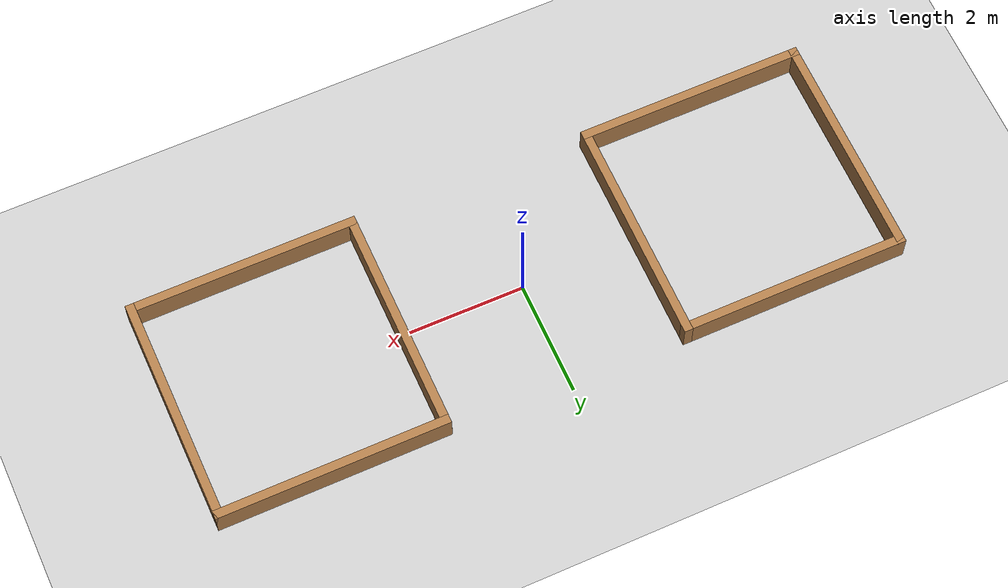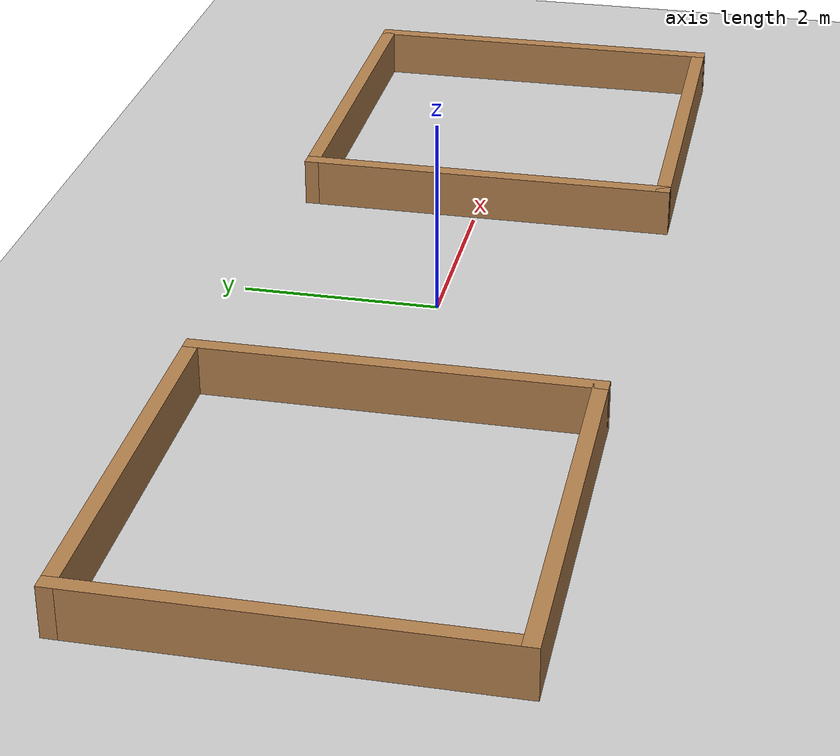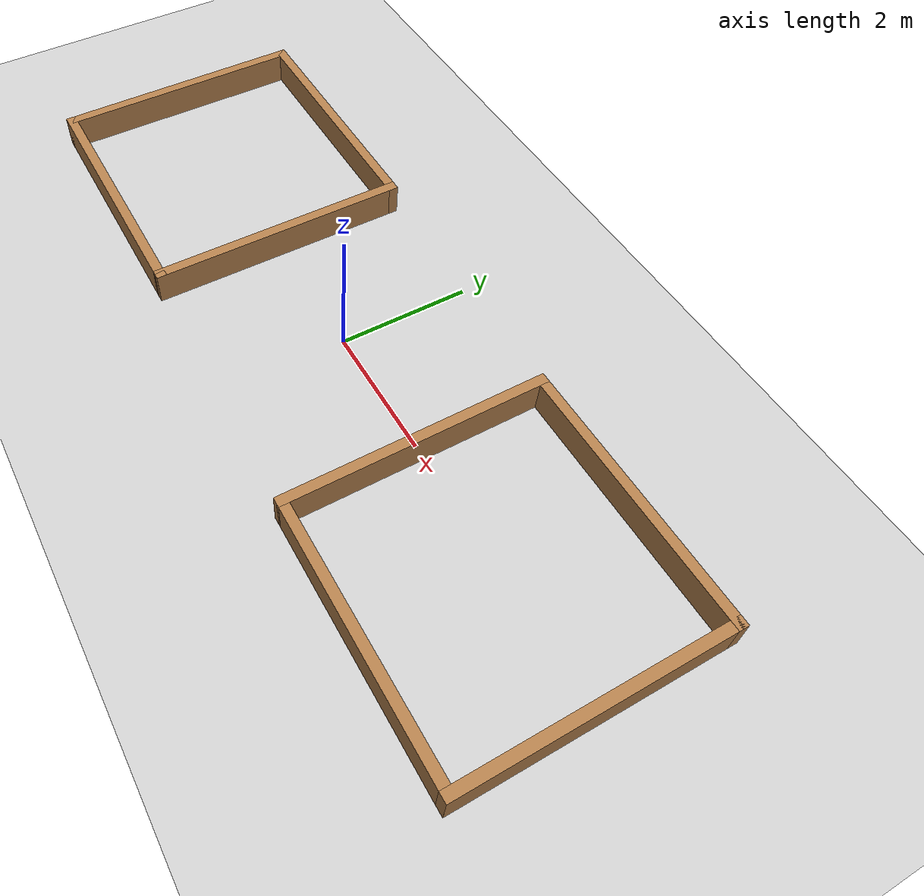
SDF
<sdf version="1.6">
 <world name="default">
  <scene><ambient>0.4 0.4 0.4 1</ambient><background>0.7 0.7 0.7 1</background><shadows>1</shadows></scene>
  <light name="sun" type="directional">
   <pose>0 0 10 0 -0 0</pose>
   <diffuse>0.8 0.8 0.8 1</diffuse>
   <specular>0.2 0.2 0.2 1</specular>
   <attenuation>
    <range>1000</range>
    <constant>0.9</constant>
    <linear>0.01</linear>
    <quadratic>0.001</quadratic>
   </attenuation>
   <direction>-0.5 0.1 -0.9</direction>
  </light>
  <model name="ground_plane">
   <static>1</static>
   <link name="link">
    <collision name="collision">
     <geometry><plane><normal>0 0 1</normal><size>100 100</size></plane></geometry>
     <surface>
      <contact><collide_bitmask>65535</collide_bitmask></contact>
      <friction><ode><mu>100</mu><mu2>50</mu2></ode></friction>
     </surface>
    </collision>
    <visual name="visual">
     <cast_shadows>0</cast_shadows>
     <geometry><plane><normal>0 0 1</normal><size>100 100</size></plane></geometry>
     <material>
      <script><uri>file://media/materials/scripts/gazebo.material</uri><name>Gazebo/Grey</name></script>
     </material>
    </visual>
   </link>
  </model>
  <physics name="default_physics" default="0" type="ode">
   <real_time_update_rate>1000</real_time_update_rate>
   <max_step_size>0.001</max_step_size>
   <real_time_factor>1</real_time_factor>
   <ode>
    <solver>
     <type>quick</type>
     <iters>150</iters>
     <precon_iters>0</precon_iters>
     <sor>1.4</sor>
     <use_dynamic_moi_rescaling>1</use_dynamic_moi_rescaling>
    </solver>
    <constraints>
     <cfm>1e-05</cfm>
     <erp>0.2</erp>
     <contact_max_correcting_vel>2000</contact_max_correcting_vel>
     <contact_surface_layer>0.01</contact_surface_layer>
    </constraints>
   </ode>
  </physics>
  <gravity>0 0 -9.8</gravity>
  <magnetic_field>6e-06 2.3e-05 -4.2e-05</magnetic_field>
  <atmosphere type="adiabatic"/>
  <audio><device>default</device></audio>
  <spherical_coordinates>
   <surface_model>EARTH_WGS84</surface_model>
   <latitude_deg>0</latitude_deg>
   <longitude_deg>0</longitude_deg>
   <elevation>0</elevation>
   <heading_deg>0</heading_deg>
  </spherical_coordinates>
  <model name="turtlebot3_square">
   <pose>4.07615 -0.097545 0 0 -0 0</pose>
   <link name="Wall_0">
    <collision name="Wall_0_Collision">
     <geometry><box><size>4 0.15 0.5</size></box></geometry>
     <pose>0 0 0.25 0 -0 0</pose>
    </collision>
    <visual name="Wall_0_Visual">
     <pose>0 0 0.25 0 -0 0</pose>
     <geometry><box><size>4 0.15 0.5</size></box></geometry>
     <material>
      <script><uri>file://media/materials/scripts/gazebo.material</uri><name>Gazebo/Wood</name></script>
      <ambient>1 1 1 1</ambient>
     </material>
    </visual>
    <pose>0 1.925 0 0 -0 0</pose>
   </link>
   <link name="Wall_2">
    <collision name="Wall_2_Collision">
     <geometry><box><size>4 0.15 0.5</size></box></geometry>
     <pose>0 0 0.25 0 -0 0</pose>
    </collision>
    <visual name="Wall_2_Visual">
     <pose>0 0 0.25 0 -0 0</pose>
     <geometry><box><size>4 0.15 0.5</size></box></geometry>
     <material>
      <script><uri>file://media/materials/scripts/gazebo.material</uri><name>Gazebo/Wood</name></script>
      <ambient>1 1 1 1</ambient>
     </material>
    </visual>
    <pose>-1.925 0 0 0 0 -1.5708</pose>
   </link>
   <link name="Wall_3">
    <collision name="Wall_3_Collision">
     <geometry><box><size>4 0.15 0.5</size></box></geometry>
     <pose>0 0 0.25 0 -0 0</pose>
    </collision>
    <visual name="Wall_3_Visual">
     <pose>0 0 0.25 0 -0 0</pose>
     <geometry><box><size>4 0.15 0.5</size></box></geometry>
     <material>
      <script><uri>file://media/materials/scripts/gazebo.material</uri><name>Gazebo/Wood</name></script>
      <ambient>1 1 1 1</ambient>
     </material>
    </visual>
    <pose>0 -1.925 0 0 -0 0</pose>
   </link>
   <link name="Wall_4">
    <collision name="Wall_4_Collision">
     <geometry><box><size>4 0.15 0.5</size></box></geometry>
     <pose>0 0 0.25 0 -0 0</pose>
    </collision>
    <visual name="Wall_4_Visual">
     <pose>0 0 0.25 0 -0 0</pose>
     <geometry><box><size>4 0.15 0.5</size></box></geometry>
     <material>
      <script><uri>file://media/materials/scripts/gazebo.material</uri><name>Gazebo/Wood</name></script>
      <ambient>1 1 1 1</ambient>
     </material>
    </visual>
    <pose>1.925 0 0 0 -0 1.5708</pose>
   </link>
   <static>1</static>
  </model>
  <model name="turtlebot3_square_clone">
   <pose>-3.95032 -0.000315 0 0 -0 0</pose>
   <link name="Wall_0">
    <collision name="Wall_0_Collision">
     <geometry><box><size>4 0.15 0.5</size></box></geometry>
     <pose>0 0 0.25 0 -0 0</pose>
    </collision>
    <visual name="Wall_0_Visual">
     <pose>0 0 0.25 0 -0 0</pose>
     <geometry><box><size>4 0.15 0.5</size></box></geometry>
     <material>
      <script><uri>file://media/materials/scripts/gazebo.material</uri><name>Gazebo/Wood</name></script>
      <ambient>1 1 1 1</ambient>
     </material>
    </visual>
    <pose>0 1.925 0 0 -0 0</pose>
   </link>
   <link name="Wall_2">
    <collision name="Wall_2_Collision">
     <geometry><box><size>4 0.15 0.5</size></box></geometry>
     <pose>0 0 0.25 0 -0 0</pose>
    </collision>
    <visual name="Wall_2_Visual">
     <pose>0 0 0.25 0 -0 0</pose>
     <geometry><box><size>4 0.15 0.5</size></box></geometry>
     <material>
      <script><uri>file://media/materials/scripts/gazebo.material</uri><name>Gazebo/Wood</name></script>
      <ambient>1 1 1 1</ambient>
     </material>
    </visual>
    <pose>-1.925 0 0 0 0 -1.5708</pose>
   </link>
   <link name="Wall_3">
    <collision name="Wall_3_Collision">
     <geometry><box><size>4 0.15 0.5</size></box></geometry>
     <pose>0 0 0.25 0 -0 0</pose>
    </collision>
    <visual name="Wall_3_Visual">
     <pose>0 0 0.25 0 -0 0</pose>
     <geometry><box><size>4 0.15 0.5</size></box></geometry>
     <material>
      <script><uri>file://media/materials/scripts/gazebo.material</uri><name>Gazebo/Wood</name></script>
      <ambient>1 1 1 1</ambient>
     </material>
    </visual>
    <pose>0 -1.925 0 0 -0 0</pose>
   </link>
   <link name="Wall_4">
    <collision name="Wall_4_Collision">
     <geometry><box><size>4 0.15 0.5</size></box></geometry>
     <pose>0 0 0.25 0 -0 0</pose>
    </collision>
    <visual name="Wall_4_Visual">
     <pose>0 0 0.25 0 -0 0</pose>
     <geometry><box><size>4 0.15 0.5</size></box></geometry>
     <material>
      <script><uri>file://media/materials/scripts/gazebo.material</uri><name>Gazebo/Wood</name></script>
      <ambient>1 1 1 1</ambient>
     </material>
    </visual>
    <pose>1.925 0 0 0 -0 1.5708</pose>
   </link>
   <static>1</static>
  </model>
 </world>
</sdf>
